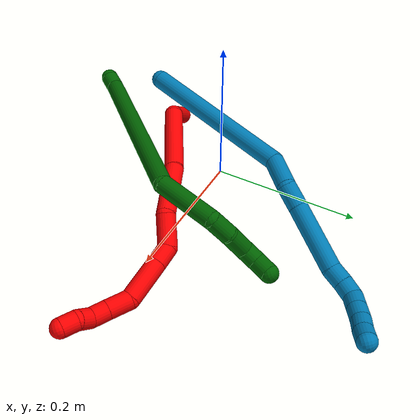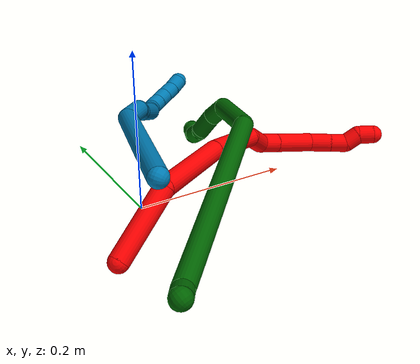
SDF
<sdf version="1.7">
 <world name="default">
  <model name="photoneo_s_sensor">
   <static>1</static>
   <pose>0 0 2 1.57079 1.57079 3.14159</pose>
   <link name="link">
    <inertial><mass>0.1</mass></inertial>
    <sensor name="sensor" type="depth">
     <update_rate>30</update_rate>
     <camera>
      <horizontal_fov>1.22</horizontal_fov>
      <image><width>1920</width><height>1200</height><format>B8G8R8</format></image>
      <clip><near>0.1</near><far>4</far></clip>
      <depth_camera><output>points</output></depth_camera>
     </camera>
     <plugin name="camera_plugin" filename="libgazebo_ros_depth_camera.so">
      <baseline>0.2</baseline>
      <alwaysOn>1</alwaysOn>
      <updateRate>0.0</updateRate>
      <cameraName>camera_ir</cameraName>
      <imageTopicName>/camera/color/image_raw</imageTopicName>
      <cameraInfoTopicName>/camera/color/camera_info</cameraInfoTopicName>
      <depthImageTopicName>/camera/depth/image_raw</depthImageTopicName>
      <depthImageCameraInfoTopicName>/camera/depth/camera_info</depthImageCameraInfoTopicName>
      <pointCloudTopicName>/camera/depth/points</pointCloudTopicName>
      <frameName>fr_optical</frameName>
      <pointCloudCutoff>0.1</pointCloudCutoff>
      <pointCloudCutoffMax>2.0</pointCloudCutoffMax>
      <distortionK1>0</distortionK1>
      <distortionK2>0</distortionK2>
      <distortionK3>0</distortionK3>
      <distortionT1>0</distortionT1>
      <distortionT2>0</distortionT2>
      <CxPrime>0</CxPrime>
      <Cx>0</Cx>
      <Cy>0</Cy>
      <focalLength>0</focalLength>
      <hackBaseline>0</hackBaseline>
     </plugin>
    </sensor>
   </link>
  </model>
  <model name="bin">
   <static>1</static>
   <link name="bottom">
    <collision name="collision-bottom">
     <pose>0 0 -0.01 0 -0 0</pose>
     <geometry><box><size>0.8 0.6 0.02</size></box></geometry>
     <surface>
      <friction><ode><mu>100</mu><mu2>100</mu2></ode></friction>
      <contact><collide_bitmask>65535</collide_bitmask></contact>
     </surface>
    </collision>
   </link>
   <link name="west_wall">
    <collision name="collision-west_wall">
     <pose>-0.41 0 0.1 0 -0 0</pose>
     <geometry><box><size>0.02 0.6 0.2</size></box></geometry>
     <surface>
      <friction><ode><mu>100</mu><mu2>100</mu2></ode></friction>
      <contact><collide_bitmask>65535</collide_bitmask></contact>
     </surface>
    </collision>
   </link>
   <link name="east_wall">
    <collision name="collision-east_wall">
     <pose>0.41 0 0.1 0 -0 0</pose>
     <geometry><box><size>0.02 0.6 0.2</size></box></geometry>
     <surface>
      <friction><ode><mu>100</mu><mu2>100</mu2></ode></friction>
      <contact><collide_bitmask>65535</collide_bitmask></contact>
     </surface>
    </collision>
   </link>
   <link name="south_wall">
    <collision name="collision-south_wall">
     <pose>0 -0.31 0.1 0 -0 0</pose>
     <geometry><box><size>0.8 0.02 0.2</size></box></geometry>
     <surface>
      <friction><ode><mu>100</mu><mu2>100</mu2></ode></friction>
      <contact><collide_bitmask>65535</collide_bitmask></contact>
     </surface>
    </collision>
   </link>
   <link name="north_wall">
    <collision name="collision-north_wall">
     <pose>0 0.31 0.1 0 -0 0</pose>
     <geometry><box><size>0.8 0.02 0.2</size></box></geometry>
     <surface>
      <friction><ode><mu>100</mu><mu2>100</mu2></ode></friction>
      <contact><collide_bitmask>65535</collide_bitmask></contact>
     </surface>
    </collision>
   </link>
  </model>
  <model name="2">
   <static>0</static>
   <link name="2">
    <collision name="collision-cylinder-e_1_1_4">
     <pose>0.025768 0.038272 -0.009733 -1.81983 0.578141 -0.730662</pose>
     <geometry><cylinder><radius>0.0125</radius><length>0.094307</length></cylinder></geometry>
     <surface>
      <friction><ode><mu>1.16</mu><mu2>1.16</mu2><slip1>0</slip1><slip2>0</slip2></ode></friction>
      <contact><ode><kp>1e+06</kp><kd>1</kd><max_vel>0</max_vel><min_depth>0.001</min_depth></ode></contact>
     </surface>
    </collision>
    <visual name="visual-cylinder-e_1_1_4">
     <pose>0.025768 0.038272 -0.009733 -1.81983 0.578141 -0.730662</pose>
     <geometry><cylinder><radius>0.0125</radius><length>0.094307</length></cylinder></geometry>
     <material><ambient>1 0 0 1</ambient></material>
    </visual>
    <collision name="collision-cylinder-e_2_4_5">
     <pose>0.077216 0.101775 -0.063304 -2.61935 0.4698 -1.46072</pose>
     <geometry><cylinder><radius>0.0125</radius><length>0.113452</length></cylinder></geometry>
     <surface>
      <friction><ode><mu>1.16</mu><mu2>1.16</mu2><slip1>0</slip1><slip2>0</slip2></ode></friction>
      <contact><ode><kp>1e+06</kp><kd>1</kd><max_vel>0</max_vel><min_depth>0.001</min_depth></ode></contact>
     </surface>
    </collision>
    <visual name="visual-cylinder-e_2_4_5">
     <pose>0.077216 0.101775 -0.063304 -2.61935 0.4698 -1.46072</pose>
     <geometry><cylinder><radius>0.0125</radius><length>0.113452</length></cylinder></geometry>
     <material><ambient>1 0 0 1</ambient></material>
    </visual>
    <collision name="collision-cylinder-e_3_5_6">
     <pose>0.12427 0.138392 -0.136561 -2.77232 0.595502 -2.04816</pose>
     <geometry><cylinder><radius>0.0125</radius><length>0.076209</length></cylinder></geometry>
     <surface>
      <friction><ode><mu>1.16</mu><mu2>1.16</mu2><slip1>0</slip1><slip2>0</slip2></ode></friction>
      <contact><ode><kp>1e+06</kp><kd>1</kd><max_vel>0</max_vel><min_depth>0.001</min_depth></ode></contact>
     </surface>
    </collision>
    <visual name="visual-cylinder-e_3_5_6">
     <pose>0.12427 0.138392 -0.136561 -2.77232 0.595502 -2.04816</pose>
     <geometry><cylinder><radius>0.0125</radius><length>0.076209</length></cylinder></geometry>
     <material><ambient>1 0 0 1</ambient></material>
    </visual>
    <collision name="collision-cylinder-e_4_6_7">
     <pose>0.151421 0.148546 -0.186156 3.08063 0.278384 2.71299</pose>
     <geometry><cylinder><radius>0.0125</radius><length>0.042045</length></cylinder></geometry>
     <surface>
      <friction><ode><mu>1.16</mu><mu2>1.16</mu2><slip1>0</slip1><slip2>0</slip2></ode></friction>
      <contact><ode><kp>1e+06</kp><kd>1</kd><max_vel>0</max_vel><min_depth>0.001</min_depth></ode></contact>
     </surface>
    </collision>
    <visual name="visual-cylinder-e_4_6_7">
     <pose>0.151421 0.148546 -0.186156 3.08063 0.278384 2.71299</pose>
     <geometry><cylinder><radius>0.0125</radius><length>0.042045</length></cylinder></geometry>
     <material><ambient>1 0 0 1</ambient></material>
    </visual>
    <collision name="collision-cylinder-e_5_7_8">
     <pose>0.167895 0.147711 -0.213655 -3.08751 0.969795 -3.03902</pose>
     <geometry><cylinder><radius>0.0125</radius><length>0.025939</length></cylinder></geometry>
     <surface>
      <friction><ode><mu>1.16</mu><mu2>1.16</mu2><slip1>0</slip1><slip2>0</slip2></ode></friction>
      <contact><ode><kp>1e+06</kp><kd>1</kd><max_vel>0</max_vel><min_depth>0.001</min_depth></ode></contact>
     </surface>
    </collision>
    <visual name="visual-cylinder-e_5_7_8">
     <pose>0.167895 0.147711 -0.213655 -3.08751 0.969795 -3.03902</pose>
     <geometry><cylinder><radius>0.0125</radius><length>0.025939</length></cylinder></geometry>
     <material><ambient>1 0 0 1</ambient></material>
    </visual>
    <collision name="collision-cylinder-e_6_8_9">
     <pose>0.20169 0.1488 -0.236328 -3.09646 0.983789 -3.05741</pose>
     <geometry><cylinder><radius>0.0125</radius><length>0.055484</length></cylinder></geometry>
     <surface>
      <friction><ode><mu>1.16</mu><mu2>1.16</mu2><slip1>0</slip1><slip2>0</slip2></ode></friction>
      <contact><ode><kp>1e+06</kp><kd>1</kd><max_vel>0</max_vel><min_depth>0.001</min_depth></ode></contact>
     </surface>
    </collision>
    <visual name="visual-cylinder-e_6_8_9">
     <pose>0.20169 0.1488 -0.236328 -3.09646 0.983789 -3.05741</pose>
     <geometry><cylinder><radius>0.0125</radius><length>0.055484</length></cylinder></geometry>
     <material><ambient>1 0 0 1</ambient></material>
    </visual>
    <collision name="collision-cylinder-e_7_9_10">
     <pose>0.239419 0.147835 -0.253201 2.31376 1.41805 2.19504</pose>
     <geometry><cylinder><radius>0.0125</radius><length>0.029608</length></cylinder></geometry>
     <surface>
      <friction><ode><mu>1.16</mu><mu2>1.16</mu2><slip1>0</slip1><slip2>0</slip2></ode></friction>
      <contact><ode><kp>1e+06</kp><kd>1</kd><max_vel>0</max_vel><min_depth>0.001</min_depth></ode></contact>
     </surface>
    </collision>
    <visual name="visual-cylinder-e_7_9_10">
     <pose>0.239419 0.147835 -0.253201 2.31376 1.41805 2.19504</pose>
     <geometry><cylinder><radius>0.0125</radius><length>0.029608</length></cylinder></geometry>
     <material><ambient>1 0 0 1</ambient></material>
    </visual>
    <collision name="collision-cylinder-e_8_10_11">
     <pose>0.264896 0.145219 -0.25599 2.49402 1.42553 2.4009</pose>
     <geometry><cylinder><radius>0.0125</radius><length>0.021922</length></cylinder></geometry>
     <surface>
      <friction><ode><mu>1.16</mu><mu2>1.16</mu2><slip1>0</slip1><slip2>0</slip2></ode></friction>
      <contact><ode><kp>1e+06</kp><kd>1</kd><max_vel>0</max_vel><min_depth>0.001</min_depth></ode></contact>
     </surface>
    </collision>
    <visual name="visual-cylinder-e_8_10_11">
     <pose>0.264896 0.145219 -0.25599 2.49402 1.42553 2.4009</pose>
     <geometry><cylinder><radius>0.0125</radius><length>0.021922</length></cylinder></geometry>
     <material><ambient>1 0 0 1</ambient></material>
    </visual>
    <collision name="collision-cylinder-e_9_11_12">
     <pose>0.28468 0.148983 -0.256254 -1.36173 1.07571 -0.900295</pose>
     <geometry><cylinder><radius>0.0125</radius><length>0.020315</length></cylinder></geometry>
     <surface>
      <friction><ode><mu>1.16</mu><mu2>1.16</mu2><slip1>0</slip1><slip2>0</slip2></ode></friction>
      <contact><ode><kp>1e+06</kp><kd>1</kd><max_vel>0</max_vel><min_depth>0.001</min_depth></ode></contact>
     </surface>
    </collision>
    <visual name="visual-cylinder-e_9_11_12">
     <pose>0.28468 0.148983 -0.256254 -1.36173 1.07571 -0.900295</pose>
     <geometry><cylinder><radius>0.0125</radius><length>0.020315</length></cylinder></geometry>
     <material><ambient>1 0 0 1</ambient></material>
    </visual>
    <collision name="collision-cylinder-e_10_12_2">
     <pose>0.303904 0.153197 -0.256376 2.71775 1.45153 2.66583</pose>
     <geometry><cylinder><radius>0.0125</radius><length>0.020719</length></cylinder></geometry>
     <surface>
      <friction><ode><mu>1.16</mu><mu2>1.16</mu2><slip1>0</slip1><slip2>0</slip2></ode></friction>
      <contact><ode><kp>1e+06</kp><kd>1</kd><max_vel>0</max_vel><min_depth>0.001</min_depth></ode></contact>
     </surface>
    </collision>
    <visual name="visual-cylinder-e_10_12_2">
     <pose>0.303904 0.153197 -0.256376 2.71775 1.45153 2.66583</pose>
     <geometry><cylinder><radius>0.0125</radius><length>0.020719</length></cylinder></geometry>
     <material><ambient>1 0 0 1</ambient></material>
    </visual>
    <collision name="collision-sphere-2">
     <pose>0.314189 0.15269 -0.2575 0 -0 0</pose>
     <geometry><sphere><radius>0.0125</radius></sphere></geometry>
     <surface>
      <friction><ode><mu>1.16</mu><mu2>1.16</mu2><slip1>0</slip1><slip2>0</slip2></ode></friction>
      <contact><ode><kp>1e+06</kp><kd>1</kd><max_vel>0</max_vel><min_depth>0.001</min_depth></ode></contact>
     </surface>
    </collision>
    <visual name="visual-sphere-2">
     <pose>0.314189 0.15269 -0.2575 0 -0 0</pose>
     <geometry><sphere><radius>0.0125</radius></sphere></geometry>
     <material><ambient>1 0 0 1</ambient></material>
    </visual>
    <collision name="collision-sphere-12">
     <pose>0.293618 0.153703 -0.255253 0 -0 0</pose>
     <geometry><sphere><radius>0.0125</radius></sphere></geometry>
     <surface>
      <friction><ode><mu>1.16</mu><mu2>1.16</mu2><slip1>0</slip1><slip2>0</slip2></ode></friction>
      <contact><ode><kp>1e+06</kp><kd>1</kd><max_vel>0</max_vel><min_depth>0.001</min_depth></ode></contact>
     </surface>
    </collision>
    <visual name="visual-sphere-12">
     <pose>0.293618 0.153703 -0.255253 0 -0 0</pose>
     <geometry><sphere><radius>0.0125</radius></sphere></geometry>
     <material><ambient>1 0 0 1</ambient></material>
    </visual>
    <collision name="collision-sphere-11">
     <pose>0.275742 0.144262 -0.257256 0 -0 0</pose>
     <geometry><sphere><radius>0.0125</radius></sphere></geometry>
     <surface>
      <friction><ode><mu>1.16</mu><mu2>1.16</mu2><slip1>0</slip1><slip2>0</slip2></ode></friction>
      <contact><ode><kp>1e+06</kp><kd>1</kd><max_vel>0</max_vel><min_depth>0.001</min_depth></ode></contact>
     </surface>
    </collision>
    <visual name="visual-sphere-11">
     <pose>0.275742 0.144262 -0.257256 0 -0 0</pose>
     <geometry><sphere><radius>0.0125</radius></sphere></geometry>
     <material><ambient>1 0 0 1</ambient></material>
    </visual>
    <collision name="collision-sphere-10">
     <pose>0.254051 0.146176 -0.254725 0 -0 0</pose>
     <geometry><sphere><radius>0.0125</radius></sphere></geometry>
     <surface>
      <friction><ode><mu>1.16</mu><mu2>1.16</mu2><slip1>0</slip1><slip2>0</slip2></ode></friction>
      <contact><ode><kp>1e+06</kp><kd>1</kd><max_vel>0</max_vel><min_depth>0.001</min_depth></ode></contact>
     </surface>
    </collision>
    <visual name="visual-sphere-10">
     <pose>0.254051 0.146176 -0.254725 0 -0 0</pose>
     <geometry><sphere><radius>0.0125</radius></sphere></geometry>
     <material><ambient>1 0 0 1</ambient></material>
    </visual>
    <collision name="collision-sphere-9">
     <pose>0.224788 0.149494 -0.251677 0 -0 0</pose>
     <geometry><sphere><radius>0.0125</radius></sphere></geometry>
     <surface>
      <friction><ode><mu>1.16</mu><mu2>1.16</mu2><slip1>0</slip1><slip2>0</slip2></ode></friction>
      <contact><ode><kp>1e+06</kp><kd>1</kd><max_vel>0</max_vel><min_depth>0.001</min_depth></ode></contact>
     </surface>
    </collision>
    <visual name="visual-sphere-9">
     <pose>0.224788 0.149494 -0.251677 0 -0 0</pose>
     <geometry><sphere><radius>0.0125</radius></sphere></geometry>
     <material><ambient>1 0 0 1</ambient></material>
    </visual>
    <collision name="collision-sphere-4">
     <pose>0.051536 0.076544 -0.019466 0 -0 0</pose>
     <geometry><sphere><radius>0.0125</radius></sphere></geometry>
     <surface>
      <friction><ode><mu>1.16</mu><mu2>1.16</mu2><slip1>0</slip1><slip2>0</slip2></ode></friction>
      <contact><ode><kp>1e+06</kp><kd>1</kd><max_vel>0</max_vel><min_depth>0.001</min_depth></ode></contact>
     </surface>
    </collision>
    <visual name="visual-sphere-4">
     <pose>0.051536 0.076544 -0.019466 0 -0 0</pose>
     <geometry><sphere><radius>0.0125</radius></sphere></geometry>
     <material><ambient>1 0 0 1</ambient></material>
    </visual>
    <collision name="collision-sphere-1">
     <geometry><sphere><radius>0.0125</radius></sphere></geometry>
     <surface>
      <friction><ode><mu>1.16</mu><mu2>1.16</mu2><slip1>0</slip1><slip2>0</slip2></ode></friction>
      <contact><ode><kp>1e+06</kp><kd>1</kd><max_vel>0</max_vel><min_depth>0.001</min_depth></ode></contact>
     </surface>
    </collision>
    <visual name="visual-sphere-1">
     <geometry><sphere><radius>0.0125</radius></sphere></geometry>
     <material><ambient>1 0 0 1</ambient></material>
    </visual>
    <collision name="collision-sphere-8">
     <pose>0.178592 0.148107 -0.220978 0 -0 0</pose>
     <geometry><sphere><radius>0.0125</radius></sphere></geometry>
     <surface>
      <friction><ode><mu>1.16</mu><mu2>1.16</mu2><slip1>0</slip1><slip2>0</slip2></ode></friction>
      <contact><ode><kp>1e+06</kp><kd>1</kd><max_vel>0</max_vel><min_depth>0.001</min_depth></ode></contact>
     </surface>
    </collision>
    <visual name="visual-sphere-8">
     <pose>0.178592 0.148107 -0.220978 0 -0 0</pose>
     <geometry><sphere><radius>0.0125</radius></sphere></geometry>
     <material><ambient>1 0 0 1</ambient></material>
    </visual>
    <collision name="collision-sphere-5">
     <pose>0.102897 0.127006 -0.107142 0 -0 0</pose>
     <geometry><sphere><radius>0.0125</radius></sphere></geometry>
     <surface>
      <friction><ode><mu>1.16</mu><mu2>1.16</mu2><slip1>0</slip1><slip2>0</slip2></ode></friction>
      <contact><ode><kp>1e+06</kp><kd>1</kd><max_vel>0</max_vel><min_depth>0.001</min_depth></ode></contact>
     </surface>
    </collision>
    <visual name="visual-sphere-5">
     <pose>0.102897 0.127006 -0.107142 0 -0 0</pose>
     <geometry><sphere><radius>0.0125</radius></sphere></geometry>
     <material><ambient>1 0 0 1</ambient></material>
    </visual>
    <collision name="collision-sphere-6">
     <pose>0.145644 0.149778 -0.16598 0 -0 0</pose>
     <geometry><sphere><radius>0.0125</radius></sphere></geometry>
     <surface>
      <friction><ode><mu>1.16</mu><mu2>1.16</mu2><slip1>0</slip1><slip2>0</slip2></ode></friction>
      <contact><ode><kp>1e+06</kp><kd>1</kd><max_vel>0</max_vel><min_depth>0.001</min_depth></ode></contact>
     </surface>
    </collision>
    <visual name="visual-sphere-6">
     <pose>0.145644 0.149778 -0.16598 0 -0 0</pose>
     <geometry><sphere><radius>0.0125</radius></sphere></geometry>
     <material><ambient>1 0 0 1</ambient></material>
    </visual>
    <collision name="collision-sphere-7">
     <pose>0.157198 0.147314 -0.206331 0 -0 0</pose>
     <geometry><sphere><radius>0.0125</radius></sphere></geometry>
     <surface>
      <friction><ode><mu>1.16</mu><mu2>1.16</mu2><slip1>0</slip1><slip2>0</slip2></ode></friction>
      <contact><ode><kp>1e+06</kp><kd>1</kd><max_vel>0</max_vel><min_depth>0.001</min_depth></ode></contact>
     </surface>
    </collision>
    <visual name="visual-sphere-7">
     <pose>0.157198 0.147314 -0.206331 0 -0 0</pose>
     <geometry><sphere><radius>0.0125</radius></sphere></geometry>
     <material><ambient>1 0 0 1</ambient></material>
    </visual>
    <inertial>
     <pose>0.135097 0.115594 -0.137229 0 -0 0</pose>
     <mass>0.5</mass>
     <inertia>
      <ixx>-0.00013</ixx>
      <ixy>0</ixy>
      <ixz>0</ixz>
      <iyy>-8.1e-05</iyy>
      <iyz>0</iyz>
      <izz>-0.000293</izz>
     </inertia>
    </inertial>
   </link>
   <pose>-0.076422 -0.106889 0.011487 0.95051 -0.116083 -0.555156</pose>
  </model>
  <model name="6">
   <static>0</static>
   <link name="6">
    <collision name="collision-cylinder-e_1_1_4">
     <pose>0.00291 0.009344 0.003859 -1.17913 0.280311 -0.188189</pose>
     <geometry><cylinder><radius>0.0125</radius><length>0.021039</length></cylinder></geometry>
     <surface>
      <friction><ode><mu>1.16</mu><mu2>1.16</mu2><slip1>0</slip1><slip2>0</slip2></ode></friction>
      <contact><ode><kp>1e+06</kp><kd>1</kd><max_vel>0</max_vel><min_depth>0.001</min_depth></ode></contact>
     </surface>
    </collision>
    <visual name="visual-cylinder-e_1_1_4">
     <pose>0.00291 0.009344 0.003859 -1.17913 0.280311 -0.188189</pose>
     <geometry><cylinder><radius>0.0125</radius><length>0.021039</length></cylinder></geometry>
     <material><ambient>0 0.392157 0.003922 1</ambient></material>
    </visual>
    <collision name="collision-cylinder-e_2_4_5">
     <pose>0.097512 0.107625 0.077052 -0.908627 0.682666 -0.343566</pose>
     <geometry><cylinder><radius>0.0125</radius><length>0.290685</length></cylinder></geometry>
     <surface>
      <friction><ode><mu>1.16</mu><mu2>1.16</mu2><slip1>0</slip1><slip2>0</slip2></ode></friction>
      <contact><ode><kp>1e+06</kp><kd>1</kd><max_vel>0</max_vel><min_depth>0.001</min_depth></ode></contact>
     </surface>
    </collision>
    <visual name="visual-cylinder-e_2_4_5">
     <pose>0.097512 0.107625 0.077052 -0.908627 0.682666 -0.343566</pose>
     <geometry><cylinder><radius>0.0125</radius><length>0.290685</length></cylinder></geometry>
     <material><ambient>0 0.392157 0.003922 1</ambient></material>
    </visual>
    <collision name="collision-cylinder-e_3_5_6">
     <pose>0.192597 0.227383 0.172926 -0.859903 0.083252 -0.038194</pose>
     <geometry><cylinder><radius>0.0125</radius><length>0.081629</length></cylinder></geometry>
     <surface>
      <friction><ode><mu>1.16</mu><mu2>1.16</mu2><slip1>0</slip1><slip2>0</slip2></ode></friction>
      <contact><ode><kp>1e+06</kp><kd>1</kd><max_vel>0</max_vel><min_depth>0.001</min_depth></ode></contact>
     </surface>
    </collision>
    <visual name="visual-cylinder-e_3_5_6">
     <pose>0.192597 0.227383 0.172926 -0.859903 0.083252 -0.038194</pose>
     <geometry><cylinder><radius>0.0125</radius><length>0.081629</length></cylinder></geometry>
     <material><ambient>0 0.392157 0.003922 1</ambient></material>
    </visual>
    <collision name="collision-cylinder-e_4_6_7">
     <pose>0.188178 0.270326 0.202848 -1.29873 -0.555656 0.426472</pose>
     <geometry><cylinder><radius>0.0125</radius><length>0.029625</length></cylinder></geometry>
     <surface>
      <friction><ode><mu>1.16</mu><mu2>1.16</mu2><slip1>0</slip1><slip2>0</slip2></ode></friction>
      <contact><ode><kp>1e+06</kp><kd>1</kd><max_vel>0</max_vel><min_depth>0.001</min_depth></ode></contact>
     </surface>
    </collision>
    <visual name="visual-cylinder-e_4_6_7">
     <pose>0.188178 0.270326 0.202848 -1.29873 -0.555656 0.426472</pose>
     <geometry><cylinder><radius>0.0125</radius><length>0.029625</length></cylinder></geometry>
     <material><ambient>0 0.392157 0.003922 1</ambient></material>
    </visual>
    <collision name="collision-cylinder-e_5_7_8">
     <pose>0.169297 0.294128 0.206712 -1.5295 -0.757969 0.729998</pose>
     <geometry><cylinder><radius>0.0125</radius><length>0.032197</length></cylinder></geometry>
     <surface>
      <friction><ode><mu>1.16</mu><mu2>1.16</mu2><slip1>0</slip1><slip2>0</slip2></ode></friction>
      <contact><ode><kp>1e+06</kp><kd>1</kd><max_vel>0</max_vel><min_depth>0.001</min_depth></ode></contact>
     </surface>
    </collision>
    <visual name="visual-cylinder-e_5_7_8">
     <pose>0.169297 0.294128 0.206712 -1.5295 -0.757969 0.729998</pose>
     <geometry><cylinder><radius>0.0125</radius><length>0.032197</length></cylinder></geometry>
     <material><ambient>0 0.392157 0.003922 1</ambient></material>
    </visual>
    <collision name="collision-cylinder-e_6_8_9">
     <pose>0.154802 0.315267 0.210836 -1.20329 -0.326263 0.22505</pose>
     <geometry><cylinder><radius>0.0125</radius><length>0.021396</length></cylinder></geometry>
     <surface>
      <friction><ode><mu>1.16</mu><mu2>1.16</mu2><slip1>0</slip1><slip2>0</slip2></ode></friction>
      <contact><ode><kp>1e+06</kp><kd>1</kd><max_vel>0</max_vel><min_depth>0.001</min_depth></ode></contact>
     </surface>
    </collision>
    <visual name="visual-cylinder-e_6_8_9">
     <pose>0.154802 0.315267 0.210836 -1.20329 -0.326263 0.22505</pose>
     <geometry><cylinder><radius>0.0125</radius><length>0.021396</length></cylinder></geometry>
     <material><ambient>0 0.392157 0.003922 1</ambient></material>
    </visual>
    <collision name="collision-cylinder-e_7_9_2">
     <pose>0.154007 0.333906 0.221257 -0.934719 0.226773 -0.114807</pose>
     <geometry><cylinder><radius>0.0125</radius><length>0.023428</length></cylinder></geometry>
     <surface>
      <friction><ode><mu>1.16</mu><mu2>1.16</mu2><slip1>0</slip1><slip2>0</slip2></ode></friction>
      <contact><ode><kp>1e+06</kp><kd>1</kd><max_vel>0</max_vel><min_depth>0.001</min_depth></ode></contact>
     </surface>
    </collision>
    <visual name="visual-cylinder-e_7_9_2">
     <pose>0.154007 0.333906 0.221257 -0.934719 0.226773 -0.114807</pose>
     <geometry><cylinder><radius>0.0125</radius><length>0.023428</length></cylinder></geometry>
     <material><ambient>0 0.392157 0.003922 1</ambient></material>
    </visual>
    <collision name="collision-sphere-2">
     <pose>0.15664 0.343088 0.228038 0 -0 0</pose>
     <geometry><sphere><radius>0.0125</radius></sphere></geometry>
     <surface>
      <friction><ode><mu>1.16</mu><mu2>1.16</mu2><slip1>0</slip1><slip2>0</slip2></ode></friction>
      <contact><ode><kp>1e+06</kp><kd>1</kd><max_vel>0</max_vel><min_depth>0.001</min_depth></ode></contact>
     </surface>
    </collision>
    <visual name="visual-sphere-2">
     <pose>0.15664 0.343088 0.228038 0 -0 0</pose>
     <geometry><sphere><radius>0.0125</radius></sphere></geometry>
     <material><ambient>0 0.392157 0.003922 1</ambient></material>
    </visual>
    <collision name="collision-sphere-9">
     <pose>0.151373 0.324724 0.214477 0 -0 0</pose>
     <geometry><sphere><radius>0.0125</radius></sphere></geometry>
     <surface>
      <friction><ode><mu>1.16</mu><mu2>1.16</mu2><slip1>0</slip1><slip2>0</slip2></ode></friction>
      <contact><ode><kp>1e+06</kp><kd>1</kd><max_vel>0</max_vel><min_depth>0.001</min_depth></ode></contact>
     </surface>
    </collision>
    <visual name="visual-sphere-9">
     <pose>0.151373 0.324724 0.214477 0 -0 0</pose>
     <geometry><sphere><radius>0.0125</radius></sphere></geometry>
     <material><ambient>0 0.392157 0.003922 1</ambient></material>
    </visual>
    <collision name="collision-sphere-4">
     <pose>0.005821 0.018687 0.007718 0 -0 0</pose>
     <geometry><sphere><radius>0.0125</radius></sphere></geometry>
     <surface>
      <friction><ode><mu>1.16</mu><mu2>1.16</mu2><slip1>0</slip1><slip2>0</slip2></ode></friction>
      <contact><ode><kp>1e+06</kp><kd>1</kd><max_vel>0</max_vel><min_depth>0.001</min_depth></ode></contact>
     </surface>
    </collision>
    <visual name="visual-sphere-4">
     <pose>0.005821 0.018687 0.007718 0 -0 0</pose>
     <geometry><sphere><radius>0.0125</radius></sphere></geometry>
     <material><ambient>0 0.392157 0.003922 1</ambient></material>
    </visual>
    <collision name="collision-sphere-1">
     <geometry><sphere><radius>0.0125</radius></sphere></geometry>
     <surface>
      <friction><ode><mu>1.16</mu><mu2>1.16</mu2><slip1>0</slip1><slip2>0</slip2></ode></friction>
      <contact><ode><kp>1e+06</kp><kd>1</kd><max_vel>0</max_vel><min_depth>0.001</min_depth></ode></contact>
     </surface>
    </collision>
    <visual name="visual-sphere-1">
     <geometry><sphere><radius>0.0125</radius></sphere></geometry>
     <material><ambient>0 0.392157 0.003922 1</ambient></material>
    </visual>
    <collision name="collision-sphere-8">
     <pose>0.158231 0.305809 0.207195 0 -0 0</pose>
     <geometry><sphere><radius>0.0125</radius></sphere></geometry>
     <surface>
      <friction><ode><mu>1.16</mu><mu2>1.16</mu2><slip1>0</slip1><slip2>0</slip2></ode></friction>
      <contact><ode><kp>1e+06</kp><kd>1</kd><max_vel>0</max_vel><min_depth>0.001</min_depth></ode></contact>
     </surface>
    </collision>
    <visual name="visual-sphere-8">
     <pose>0.158231 0.305809 0.207195 0 -0 0</pose>
     <geometry><sphere><radius>0.0125</radius></sphere></geometry>
     <material><ambient>0 0.392157 0.003922 1</ambient></material>
    </visual>
    <collision name="collision-sphere-5">
     <pose>0.189203 0.196562 0.146387 0 -0 0</pose>
     <geometry><sphere><radius>0.0125</radius></sphere></geometry>
     <surface>
      <friction><ode><mu>1.16</mu><mu2>1.16</mu2><slip1>0</slip1><slip2>0</slip2></ode></friction>
      <contact><ode><kp>1e+06</kp><kd>1</kd><max_vel>0</max_vel><min_depth>0.001</min_depth></ode></contact>
     </surface>
    </collision>
    <visual name="visual-sphere-5">
     <pose>0.189203 0.196562 0.146387 0 -0 0</pose>
     <geometry><sphere><radius>0.0125</radius></sphere></geometry>
     <material><ambient>0 0.392157 0.003922 1</ambient></material>
    </visual>
    <collision name="collision-sphere-6">
     <pose>0.195991 0.258205 0.199466 0 -0 0</pose>
     <geometry><sphere><radius>0.0125</radius></sphere></geometry>
     <surface>
      <friction><ode><mu>1.16</mu><mu2>1.16</mu2><slip1>0</slip1><slip2>0</slip2></ode></friction>
      <contact><ode><kp>1e+06</kp><kd>1</kd><max_vel>0</max_vel><min_depth>0.001</min_depth></ode></contact>
     </surface>
    </collision>
    <visual name="visual-sphere-6">
     <pose>0.195991 0.258205 0.199466 0 -0 0</pose>
     <geometry><sphere><radius>0.0125</radius></sphere></geometry>
     <material><ambient>0 0.392157 0.003922 1</ambient></material>
    </visual>
    <collision name="collision-sphere-7">
     <pose>0.180364 0.282447 0.206229 0 -0 0</pose>
     <geometry><sphere><radius>0.0125</radius></sphere></geometry>
     <surface>
      <friction><ode><mu>1.16</mu><mu2>1.16</mu2><slip1>0</slip1><slip2>0</slip2></ode></friction>
      <contact><ode><kp>1e+06</kp><kd>1</kd><max_vel>0</max_vel><min_depth>0.001</min_depth></ode></contact>
     </surface>
    </collision>
    <visual name="visual-sphere-7">
     <pose>0.180364 0.282447 0.206229 0 -0 0</pose>
     <geometry><sphere><radius>0.0125</radius></sphere></geometry>
     <material><ambient>0 0.392157 0.003922 1</ambient></material>
    </visual>
    <inertial>
     <pose>0.124148 0.164179 0.117909 0 -0 0</pose>
     <mass>0.5</mass>
     <inertia>
      <ixx>0.001037</ixx>
      <ixy>0</ixy>
      <ixz>0</ixz>
      <iyy>0.001064</iyy>
      <iyz>0</iyz>
      <izz>-0.002587</izz>
     </inertia>
    </inertial>
   </link>
   <pose>-0.068872 -0.232803 0.043844 -0.886593 -0.498112 -0.065661</pose>
  </model>
  <model name="9">
   <static>0</static>
   <link name="9">
    <collision name="collision-cylinder-e_1_1_4">
     <pose>0.053554 0.071216 0.060148 -0.869458 0.521464 -0.24653</pose>
     <geometry><cylinder><radius>0.0125</radius><length>0.215012</length></cylinder></geometry>
     <surface>
      <friction><ode><mu>1.16</mu><mu2>1.16</mu2><slip1>0</slip1><slip2>0</slip2></ode></friction>
      <contact><ode><kp>1e+06</kp><kd>1</kd><max_vel>0</max_vel><min_depth>0.001</min_depth></ode></contact>
     </surface>
    </collision>
    <visual name="visual-cylinder-e_1_1_4">
     <pose>0.053554 0.071216 0.060148 -0.869458 0.521464 -0.24653</pose>
     <geometry><cylinder><radius>0.0125</radius><length>0.215012</length></cylinder></geometry>
     <material><ambient>0 0.490196 0.709804 1</ambient></material>
    </visual>
    <collision name="collision-cylinder-e_2_4_5">
     <pose>0.12218 0.158138 0.122891 -1.40702 0.758068 -0.651662</pose>
     <geometry><cylinder><radius>0.0125</radius><length>0.043843</length></cylinder></geometry>
     <surface>
      <friction><ode><mu>1.16</mu><mu2>1.16</mu2><slip1>0</slip1><slip2>0</slip2></ode></friction>
      <contact><ode><kp>1e+06</kp><kd>1</kd><max_vel>0</max_vel><min_depth>0.001</min_depth></ode></contact>
     </surface>
    </collision>
    <visual name="visual-cylinder-e_2_4_5">
     <pose>0.12218 0.158138 0.122891 -1.40702 0.758068 -0.651662</pose>
     <geometry><cylinder><radius>0.0125</radius><length>0.043843</length></cylinder></geometry>
     <material><ambient>0 0.490196 0.709804 1</ambient></material>
    </visual>
    <collision name="collision-cylinder-e_3_5_6">
     <pose>0.142304 0.188158 0.12912 -1.32221 0.329683 -0.257371</pose>
     <geometry><cylinder><radius>0.0125</radius><length>0.031218</length></cylinder></geometry>
     <surface>
      <friction><ode><mu>1.16</mu><mu2>1.16</mu2><slip1>0</slip1><slip2>0</slip2></ode></friction>
      <contact><ode><kp>1e+06</kp><kd>1</kd><max_vel>0</max_vel><min_depth>0.001</min_depth></ode></contact>
     </surface>
    </collision>
    <visual name="visual-cylinder-e_3_5_6">
     <pose>0.142304 0.188158 0.12912 -1.32221 0.329683 -0.257371</pose>
     <geometry><cylinder><radius>0.0125</radius><length>0.031218</length></cylinder></geometry>
     <material><ambient>0 0.490196 0.709804 1</ambient></material>
    </visual>
    <collision name="collision-cylinder-e_4_6_7">
     <pose>0.166586 0.240666 0.141499 -1.34568 0.456218 -0.365859</pose>
     <geometry><cylinder><radius>0.0125</radius><length>0.087291</length></cylinder></geometry>
     <surface>
      <friction><ode><mu>1.16</mu><mu2>1.16</mu2><slip1>0</slip1><slip2>0</slip2></ode></friction>
      <contact><ode><kp>1e+06</kp><kd>1</kd><max_vel>0</max_vel><min_depth>0.001</min_depth></ode></contact>
     </surface>
    </collision>
    <visual name="visual-cylinder-e_4_6_7">
     <pose>0.166586 0.240666 0.141499 -1.34568 0.456218 -0.365859</pose>
     <geometry><cylinder><radius>0.0125</radius><length>0.087291</length></cylinder></geometry>
     <material><ambient>0 0.490196 0.709804 1</ambient></material>
    </visual>
    <collision name="collision-cylinder-e_5_7_8">
     <pose>0.190585 0.287544 0.154458 -1.11916 0.459001 -0.290597</pose>
     <geometry><cylinder><radius>0.0125</radius><length>0.021534</length></cylinder></geometry>
     <surface>
      <friction><ode><mu>1.16</mu><mu2>1.16</mu2><slip1>0</slip1><slip2>0</slip2></ode></friction>
      <contact><ode><kp>1e+06</kp><kd>1</kd><max_vel>0</max_vel><min_depth>0.001</min_depth></ode></contact>
     </surface>
    </collision>
    <visual name="visual-cylinder-e_5_7_8">
     <pose>0.190585 0.287544 0.154458 -1.11916 0.459001 -0.290597</pose>
     <geometry><cylinder><radius>0.0125</radius><length>0.021534</length></cylinder></geometry>
     <material><ambient>0 0.490196 0.709804 1</ambient></material>
    </visual>
    <collision name="collision-cylinder-e_6_8_9">
     <pose>0.201002 0.304227 0.161736 -1.20481 0.582848 -0.406847</pose>
     <geometry><cylinder><radius>0.0125</radius><length>0.020519</length></cylinder></geometry>
     <surface>
      <friction><ode><mu>1.16</mu><mu2>1.16</mu2><slip1>0</slip1><slip2>0</slip2></ode></friction>
      <contact><ode><kp>1e+06</kp><kd>1</kd><max_vel>0</max_vel><min_depth>0.001</min_depth></ode></contact>
     </surface>
    </collision>
    <visual name="visual-cylinder-e_6_8_9">
     <pose>0.201002 0.304227 0.161736 -1.20481 0.582848 -0.406847</pose>
     <geometry><cylinder><radius>0.0125</radius><length>0.020519</length></cylinder></geometry>
     <material><ambient>0 0.490196 0.709804 1</ambient></material>
    </visual>
    <collision name="collision-cylinder-e_7_9_10">
     <pose>0.215665 0.316737 0.164299 -1.68166 1.10428 -1.20586</pose>
     <geometry><cylinder><radius>0.0125</radius><length>0.020189</length></cylinder></geometry>
     <surface>
      <friction><ode><mu>1.16</mu><mu2>1.16</mu2><slip1>0</slip1><slip2>0</slip2></ode></friction>
      <contact><ode><kp>1e+06</kp><kd>1</kd><max_vel>0</max_vel><min_depth>0.001</min_depth></ode></contact>
     </surface>
    </collision>
    <visual name="visual-cylinder-e_7_9_10">
     <pose>0.215665 0.316737 0.164299 -1.68166 1.10428 -1.20586</pose>
     <geometry><cylinder><radius>0.0125</radius><length>0.020189</length></cylinder></geometry>
     <material><ambient>0 0.490196 0.709804 1</ambient></material>
    </visual>
    <collision name="collision-cylinder-e_8_10_11">
     <pose>0.233639 0.325708 0.163359 -1.66863 1.1071 -1.19658</pose>
     <geometry><cylinder><radius>0.0125</radius><length>0.020033</length></cylinder></geometry>
     <surface>
      <friction><ode><mu>1.16</mu><mu2>1.16</mu2><slip1>0</slip1><slip2>0</slip2></ode></friction>
      <contact><ode><kp>1e+06</kp><kd>1</kd><max_vel>0</max_vel><min_depth>0.001</min_depth></ode></contact>
     </surface>
    </collision>
    <visual name="visual-cylinder-e_8_10_11">
     <pose>0.233639 0.325708 0.163359 -1.66863 1.1071 -1.19658</pose>
     <geometry><cylinder><radius>0.0125</radius><length>0.020033</length></cylinder></geometry>
     <material><ambient>0 0.490196 0.709804 1</ambient></material>
    </visual>
    <collision name="collision-cylinder-e_9_11_12">
     <pose>0.251974 0.333494 0.161519 -1.96984 1.2032 -1.6047</pose>
     <geometry><cylinder><radius>0.0125</radius><length>0.020096</length></cylinder></geometry>
     <surface>
      <friction><ode><mu>1.16</mu><mu2>1.16</mu2><slip1>0</slip1><slip2>0</slip2></ode></friction>
      <contact><ode><kp>1e+06</kp><kd>1</kd><max_vel>0</max_vel><min_depth>0.001</min_depth></ode></contact>
     </surface>
    </collision>
    <visual name="visual-cylinder-e_9_11_12">
     <pose>0.251974 0.333494 0.161519 -1.96984 1.2032 -1.6047</pose>
     <geometry><cylinder><radius>0.0125</radius><length>0.020096</length></cylinder></geometry>
     <material><ambient>0 0.490196 0.709804 1</ambient></material>
    </visual>
    <collision name="collision-cylinder-e_10_12_2">
     <pose>0.271089 0.339562 0.159538 -1.77843 1.29071 -1.49618</pose>
     <geometry><cylinder><radius>0.0125</radius><length>0.020266</length></cylinder></geometry>
     <surface>
      <friction><ode><mu>1.16</mu><mu2>1.16</mu2><slip1>0</slip1><slip2>0</slip2></ode></friction>
      <contact><ode><kp>1e+06</kp><kd>1</kd><max_vel>0</max_vel><min_depth>0.001</min_depth></ode></contact>
     </surface>
    </collision>
    <visual name="visual-cylinder-e_10_12_2">
     <pose>0.271089 0.339562 0.159538 -1.77843 1.29071 -1.49618</pose>
     <geometry><cylinder><radius>0.0125</radius><length>0.020266</length></cylinder></geometry>
     <material><ambient>0 0.490196 0.709804 1</ambient></material>
    </visual>
    <collision name="collision-sphere-2">
     <pose>0.280827 0.342303 0.158961 0 -0 0</pose>
     <geometry><sphere><radius>0.0125</radius></sphere></geometry>
     <surface>
      <friction><ode><mu>1.16</mu><mu2>1.16</mu2><slip1>0</slip1><slip2>0</slip2></ode></friction>
      <contact><ode><kp>1e+06</kp><kd>1</kd><max_vel>0</max_vel><min_depth>0.001</min_depth></ode></contact>
     </surface>
    </collision>
    <visual name="visual-sphere-2">
     <pose>0.280827 0.342303 0.158961 0 -0 0</pose>
     <geometry><sphere><radius>0.0125</radius></sphere></geometry>
     <material><ambient>0 0.490196 0.709804 1</ambient></material>
    </visual>
    <collision name="collision-sphere-12">
     <pose>0.261351 0.336821 0.160116 0 -0 0</pose>
     <geometry><sphere><radius>0.0125</radius></sphere></geometry>
     <surface>
      <friction><ode><mu>1.16</mu><mu2>1.16</mu2><slip1>0</slip1><slip2>0</slip2></ode></friction>
      <contact><ode><kp>1e+06</kp><kd>1</kd><max_vel>0</max_vel><min_depth>0.001</min_depth></ode></contact>
     </surface>
    </collision>
    <visual name="visual-sphere-12">
     <pose>0.261351 0.336821 0.160116 0 -0 0</pose>
     <geometry><sphere><radius>0.0125</radius></sphere></geometry>
     <material><ambient>0 0.490196 0.709804 1</ambient></material>
    </visual>
    <collision name="collision-sphere-11">
     <pose>0.242598 0.330166 0.162922 0 -0 0</pose>
     <geometry><sphere><radius>0.0125</radius></sphere></geometry>
     <surface>
      <friction><ode><mu>1.16</mu><mu2>1.16</mu2><slip1>0</slip1><slip2>0</slip2></ode></friction>
      <contact><ode><kp>1e+06</kp><kd>1</kd><max_vel>0</max_vel><min_depth>0.001</min_depth></ode></contact>
     </surface>
    </collision>
    <visual name="visual-sphere-11">
     <pose>0.242598 0.330166 0.162922 0 -0 0</pose>
     <geometry><sphere><radius>0.0125</radius></sphere></geometry>
     <material><ambient>0 0.490196 0.709804 1</ambient></material>
    </visual>
    <collision name="collision-sphere-10">
     <pose>0.22468 0.32125 0.163797 0 -0 0</pose>
     <geometry><sphere><radius>0.0125</radius></sphere></geometry>
     <surface>
      <friction><ode><mu>1.16</mu><mu2>1.16</mu2><slip1>0</slip1><slip2>0</slip2></ode></friction>
      <contact><ode><kp>1e+06</kp><kd>1</kd><max_vel>0</max_vel><min_depth>0.001</min_depth></ode></contact>
     </surface>
    </collision>
    <visual name="visual-sphere-10">
     <pose>0.22468 0.32125 0.163797 0 -0 0</pose>
     <geometry><sphere><radius>0.0125</radius></sphere></geometry>
     <material><ambient>0 0.490196 0.709804 1</ambient></material>
    </visual>
    <collision name="collision-sphere-9">
     <pose>0.206649 0.312225 0.164802 0 -0 0</pose>
     <geometry><sphere><radius>0.0125</radius></sphere></geometry>
     <surface>
      <friction><ode><mu>1.16</mu><mu2>1.16</mu2><slip1>0</slip1><slip2>0</slip2></ode></friction>
      <contact><ode><kp>1e+06</kp><kd>1</kd><max_vel>0</max_vel><min_depth>0.001</min_depth></ode></contact>
     </surface>
    </collision>
    <visual name="visual-sphere-9">
     <pose>0.206649 0.312225 0.164802 0 -0 0</pose>
     <geometry><sphere><radius>0.0125</radius></sphere></geometry>
     <material><ambient>0 0.490196 0.709804 1</ambient></material>
    </visual>
    <collision name="collision-sphere-4">
     <pose>0.107108 0.142432 0.120295 0 -0 0</pose>
     <geometry><sphere><radius>0.0125</radius></sphere></geometry>
     <surface>
      <friction><ode><mu>1.16</mu><mu2>1.16</mu2><slip1>0</slip1><slip2>0</slip2></ode></friction>
      <contact><ode><kp>1e+06</kp><kd>1</kd><max_vel>0</max_vel><min_depth>0.001</min_depth></ode></contact>
     </surface>
    </collision>
    <visual name="visual-sphere-4">
     <pose>0.107108 0.142432 0.120295 0 -0 0</pose>
     <geometry><sphere><radius>0.0125</radius></sphere></geometry>
     <material><ambient>0 0.490196 0.709804 1</ambient></material>
    </visual>
    <collision name="collision-sphere-1">
     <geometry><sphere><radius>0.0125</radius></sphere></geometry>
     <surface>
      <friction><ode><mu>1.16</mu><mu2>1.16</mu2><slip1>0</slip1><slip2>0</slip2></ode></friction>
      <contact><ode><kp>1e+06</kp><kd>1</kd><max_vel>0</max_vel><min_depth>0.001</min_depth></ode></contact>
     </surface>
    </collision>
    <visual name="visual-sphere-1">
     <geometry><sphere><radius>0.0125</radius></sphere></geometry>
     <material><ambient>0 0.490196 0.709804 1</ambient></material>
    </visual>
    <collision name="collision-sphere-8">
     <pose>0.195355 0.296228 0.158671 0 -0 0</pose>
     <geometry><sphere><radius>0.0125</radius></sphere></geometry>
     <surface>
      <friction><ode><mu>1.16</mu><mu2>1.16</mu2><slip1>0</slip1><slip2>0</slip2></ode></friction>
      <contact><ode><kp>1e+06</kp><kd>1</kd><max_vel>0</max_vel><min_depth>0.001</min_depth></ode></contact>
     </surface>
    </collision>
    <visual name="visual-sphere-8">
     <pose>0.195355 0.296228 0.158671 0 -0 0</pose>
     <geometry><sphere><radius>0.0125</radius></sphere></geometry>
     <material><ambient>0 0.490196 0.709804 1</ambient></material>
    </visual>
    <collision name="collision-sphere-5">
     <pose>0.137251 0.173843 0.125486 0 -0 0</pose>
     <geometry><sphere><radius>0.0125</radius></sphere></geometry>
     <surface>
      <friction><ode><mu>1.16</mu><mu2>1.16</mu2><slip1>0</slip1><slip2>0</slip2></ode></friction>
      <contact><ode><kp>1e+06</kp><kd>1</kd><max_vel>0</max_vel><min_depth>0.001</min_depth></ode></contact>
     </surface>
    </collision>
    <visual name="visual-sphere-5">
     <pose>0.137251 0.173843 0.125486 0 -0 0</pose>
     <geometry><sphere><radius>0.0125</radius></sphere></geometry>
     <material><ambient>0 0.490196 0.709804 1</ambient></material>
    </visual>
    <collision name="collision-sphere-6">
     <pose>0.147358 0.202473 0.132753 0 -0 0</pose>
     <geometry><sphere><radius>0.0125</radius></sphere></geometry>
     <surface>
      <friction><ode><mu>1.16</mu><mu2>1.16</mu2><slip1>0</slip1><slip2>0</slip2></ode></friction>
      <contact><ode><kp>1e+06</kp><kd>1</kd><max_vel>0</max_vel><min_depth>0.001</min_depth></ode></contact>
     </surface>
    </collision>
    <visual name="visual-sphere-6">
     <pose>0.147358 0.202473 0.132753 0 -0 0</pose>
     <geometry><sphere><radius>0.0125</radius></sphere></geometry>
     <material><ambient>0 0.490196 0.709804 1</ambient></material>
    </visual>
    <collision name="collision-sphere-7">
     <pose>0.185814 0.278859 0.150245 0 -0 0</pose>
     <geometry><sphere><radius>0.0125</radius></sphere></geometry>
     <surface>
      <friction><ode><mu>1.16</mu><mu2>1.16</mu2><slip1>0</slip1><slip2>0</slip2></ode></friction>
      <contact><ode><kp>1e+06</kp><kd>1</kd><max_vel>0</max_vel><min_depth>0.001</min_depth></ode></contact>
     </surface>
    </collision>
    <visual name="visual-sphere-7">
     <pose>0.185814 0.278859 0.150245 0 -0 0</pose>
     <geometry><sphere><radius>0.0125</radius></sphere></geometry>
     <material><ambient>0 0.490196 0.709804 1</ambient></material>
    </visual>
    <inertial>
     <pose>0.127351 0.176129 0.108832 0 -0 0</pose>
     <mass>0.5</mass>
     <inertia>
      <ixx>0.000583</ixx>
      <ixy>0</ixy>
      <ixz>0</ixz>
      <iyy>0.000458</iyy>
      <iyz>0</iyz>
      <izz>-0.001065</izz>
     </inertia>
    </inertial>
   </link>
   <pose>-0.02921 -0.113073 0.102446 -1.30653 -0.618499 0.49203</pose>
  </model>
 </world>
</sdf>
